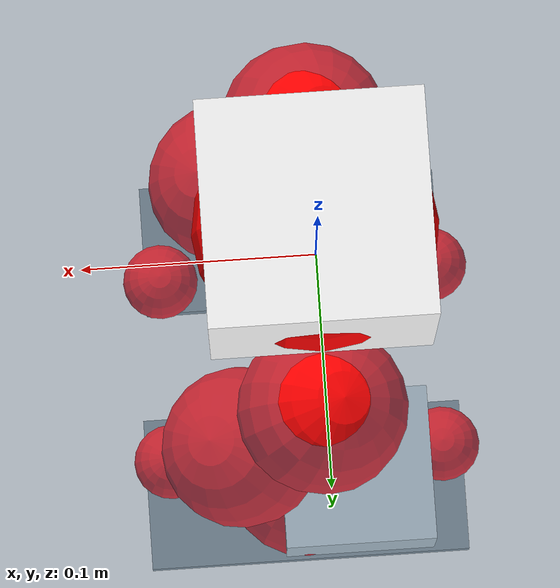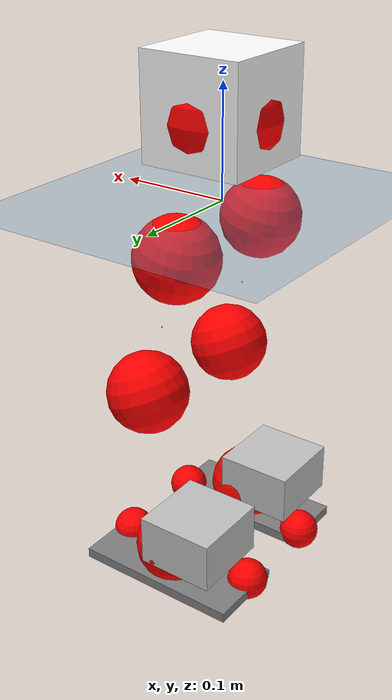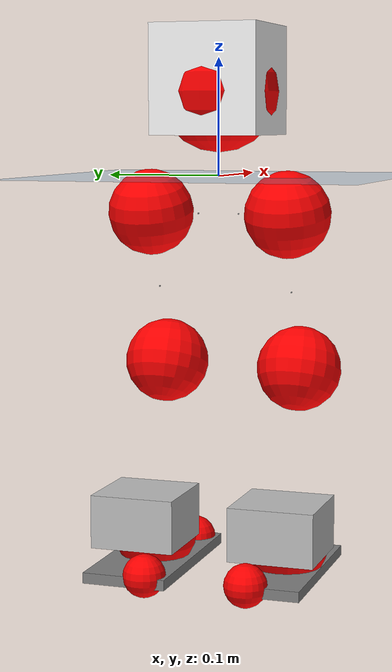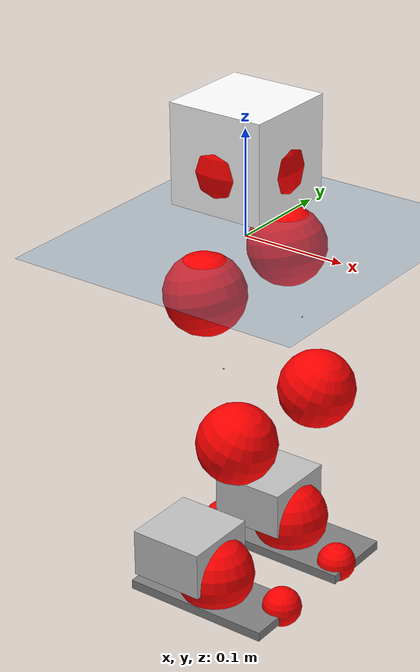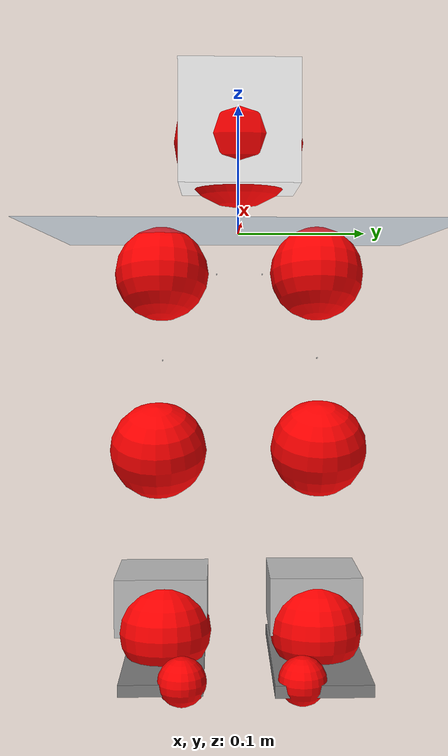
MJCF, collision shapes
<mujoco model="pi_12dof_release_v1">
  <compiler angle="radian" assetdir="assets" balanceinertia="true" inertiafromgeom="false"/>

  <option timestep="0.005" density="1.2" viscosity="2e-05"/>

  <size nkey="1"/>

  <visual>
    <quality shadowsize="8192"/>
    <map shadowclip="0.5"/>
  </visual>

  <default>
    <default class="/">
      <joint armature="0.01" damping="0.01" frictionloss="0.01"/>
      <geom contype="0" conaffinity="0" group="1" solref="-1000 -80"/>
      <site size="0.01 0.005 0.005" group="5"/>
      <general forcelimited="true" biastype="affine" gainprm="20" biasprm="0 -20 -0.5"/>
      <default class="foot">
        <geom size="0.0845 0.036 0.005" type="box" condim="6" group="4" priority="1" friction="0.9 0.2 0.2" solimp="0.015 1 0.005"/>
      </default>
      <default class="reward_collision_sphere">
        <geom group="5" rgba="1 0 0 1"/>
      </default>
    </default>
  </default>

  <asset>
    <texture type="skybox" colorspace="auto" name="//unnamed_texture_0" builtin="gradient" rgb1="0.95 0.95 0.95" rgb2="0.95 0.95 0.95" width="100" height="600"/>
    <texture type="2d" colorspace="auto" name="texplane" builtin="checker" rgb1="0.345 0.575 0.748" rgb2="0.345 0.575 0.748" markrgb="1 1 1" width="512" height="512"/>
    <material name="MatPlane" class="/" texture="texplane" texuniform="true" texrepeat="2 2" specular="0.9"/>
    <mesh name="baselink_1" class="/" file="baselink_1.STL"/>
    <mesh name="r_hip_pitch_link" class="/" file="r_hip_pitch_link.STL"/>
    <mesh name="r_hip_roll_link" class="/" file="r_hip_roll_link.STL"/>
    <mesh name="r_thigh_link" class="/" file="r_thigh_link.STL"/>
    <mesh name="r_calf_link" class="/" file="r_calf_link.STL"/>
    <mesh name="r_ankle_pitch_link" class="/" file="r_ankle_pitch_link.STL"/>
    <mesh name="r_ankle_roll_link" class="/" file="r_ankle_roll_link.STL"/>
    <mesh name="l_hip_pitch_link" class="/" file="l_hip_pitch_link.STL"/>
    <mesh name="l_hip_roll_link" class="/" file="l_hip_roll_link.STL"/>
    <mesh name="l_thigh_link" class="/" file="l_thigh_link.STL"/>
    <mesh name="l_calf_link" class="/" file="l_calf_link.STL"/>
    <mesh name="l_ankle_pitch_link" class="/" file="l_ankle_pitch_link.STL"/>
    <mesh name="l_ankle_roll_link" class="/" file="l_ankle_roll_link.STL"/>
  </asset>

  <worldbody>
    <geom name="floor" class="/" size="100 100 0.125" type="plane" group="0" material="MatPlane"/>
    <light name="toplight_shadow" class="/" pos="0 0 5" dir="0.0990148 0.0990148 -0.990148" type="directional" ambient="0.04 0.04 0.04" diffuse="0.55 0.55 0.55" specular="0.12 0.12 0.12"/>
    <light name="toplight_fill" class="/" pos="0 0 5" dir="0.0990148 0.0990148 -0.990148" type="directional" castshadow="false" ambient="0.04 0.04 0.04" diffuse="0.3 0.3 0.3" specular="0.08 0.08 0.08"/>
    <body name="trunk" pos="0.000818934 0.000154773 0.000673359" quat="1 -0.000424617 -1.83955e-05 -0.00012045">
      <inertial pos="0.00300388 -0.00107862 0.0402542" quat="0.696715 0.0110337 0.0105414 0.717186" mass="1.73578" diaginertia="0.00951348 0.00270551 0.00436516"/>
      <joint name="//unnamed_joint_0" type="free"/>
      <geom name="//unnamed_geom_1" class="/" type="mesh" density="0" rgba="1 1 1 1" mesh="baselink_1"/>
      <geom name="//unnamed_geom_2" class="/" size="0.0464038 0.0464038 0.0464038" pos="0 0 0.080501" type="box" rgba="1 1 1 1"/>
      <geom name="//unnamed_geom_3" class="reward_collision_sphere" size="0.0510442" pos="0 0 0.0704384"/>
      <site name="imu" class="/" pos="-0.0039924 -0.00397153 4.68352e-05" size="0.00928076"/>
      <camera name="track" class="/" pos="0 -1.57241 0" quat="0.707107 0.707107 0 0" mode="trackcom"/>
      <camera name="ego_camera" class="/" pos="0.074382 0 0.181127" quat="-0.5 -0.5 0.5 0.5"/>
      <body name="r_hip_pitch_link" pos="-0.00018633 -0.0175732 -0.0329034" quat="0.99217 -1.34034e-05 -0.124893 8.72874e-05">
        <inertial pos="0.00184674 -0.0439566 -0.000182172" quat="-0.0198344 0.704941 -0.0248021 0.708554" mass="0.296264" diaginertia="0.000104296 2.94578e-05 8.51151e-05"/>
        <joint name="r_hip_pitch_joint" class="/" pos="0 0 0" axis="-0.000476965 -1 -0.000522743" range="-1.74616 1.24519" armature="0.00962727" damping="0.0164698" frictionloss="0.00945487"/>
        <geom name="//unnamed_geom_4" class="/" type="mesh" density="0" rgba="0.75294 0.75294 0.75294 1" mesh="r_hip_pitch_link"/>
        <geom name="//unnamed_geom_5" class="/" size="0.000464038 0.000464038 0.000464038" type="box" rgba="0.75294 0.75294 0.75294 1"/>
        <body name="r_hip_roll_link" pos="0.000106623 -0.0434739 2.08332e-05" quat="1 -2.15564e-05 -8.09878e-05 -0.000127188">
          <inertial pos="-0.0012961 -0.000379117 -0.0627989" quat="0.706646 -0.0778639 -0.081766 0.6985" mass="0.308261" diaginertia="0.000321109 8.41226e-05 0.000132844"/>
          <joint name="r_hip_roll_joint" class="/" pos="0 0 0" axis="-0.999992 0.00379425 0.00126733" range="-0.121598 0.496931" armature="0.00931747" damping="0.00503947" frictionloss="0.00920042"/>
          <geom name="//unnamed_geom_6" class="/" type="mesh" density="0" rgba="0.75294 0.75294 0.75294 1" mesh="r_hip_roll_link"/>
          <geom name="//unnamed_geom_7" class="/" size="0.000464038 0.000464038 0.000464038" type="box" rgba="0.75294 0.75294 0.75294 1"/>
          <geom name="//unnamed_geom_8" class="reward_collision_sphere" size="0.0371231"/>
          <body name="r_thigh_link" pos="0.000719918 0.00136509 -0.0701905" quat="1 4.70538e-05 6.87328e-07 -5.51683e-05">
            <inertial pos="-4.01287e-05 0.00163477 -0.0488123" quat="0.737329 0.675534 -7.71942e-05 -9.72702e-05" mass="0.0903817" diaginertia="0.000118903 2.83295e-05 5.99483e-05"/>
            <joint name="r_thigh_joint" class="/" pos="0 0 0" axis="0.000581275 0.00284111 -0.999996" range="-0.295261 0.593527" armature="0.009472" damping="0.00602729" frictionloss="0.00889905"/>
            <geom name="//unnamed_geom_9" class="/" type="mesh" density="0" rgba="0.75294 0.75294 0.75294 1" mesh="r_thigh_link"/>
            <geom name="//unnamed_geom_10" class="/" size="0.000464038 0.000464038 0.000464038" type="box" rgba="0.75294 0.75294 0.75294 1"/>
            <body name="r_calf_link" pos="-0.00142891 -0.00274291 -0.0704731" quat="0.947648 5.62181e-06 0.319316 7.89544e-06">
              <inertial pos="-0.000561355 0.000266091 -0.0702147" quat="0.999984 -0.00360161 0.000180598 0.0044644" mass="0.653094" diaginertia="0.00342106 0.00105106 0.000181627"/>
              <joint name="r_calf_joint" class="/" pos="0 0 0" axis="0.00161636 -0.999996 0.00213119" range="-1.65048 0.649398" armature="0.00960794" damping="0.00817275" frictionloss="0.00921216"/>
              <geom name="//unnamed_geom_11" class="/" type="mesh" density="0" rgba="0.75294 0.75294 0.75294 1" mesh="r_calf_link"/>
              <geom name="//unnamed_geom_12" class="/" size="0.000464038 0.000464038 0.000464038" type="box" rgba="0.75294 0.75294 0.75294 1"/>
              <geom name="//unnamed_geom_13" class="reward_collision_sphere" size="0.0371231"/>
              <body name="r_ankle_pitch_link" pos="9.65713e-05 4.36086e-05 -0.140389" quat="0.980063 0.000127708 -0.198687 2.16979e-05">
                <inertial pos="0.00476671 0.00276235 -0.000647955" quat="-0.000746088 0.705648 0.000371368 0.708562" mass="0.141491" diaginertia="0.000298763 6.68435e-05 0.000123975"/>
                <joint name="r_ankle_pitch_joint" class="/" pos="0 0 0" axis="0.000917358 -0.999999 -0.00125475" stiffness="0.000614436" range="-1.29965 0.513188" armature="0.00930946" damping="0.00748488" frictionloss="0.00916216"/>
                <geom name="//unnamed_geom_14" class="/" type="mesh" density="0" rgba="0.75294 0.75294 0.75294 1" mesh="r_ankle_pitch_link"/>
                <geom name="//unnamed_geom_15" class="/" size="0.036195 0.0371231 0.0232019" type="box" rgba="0.75294 0.75294 0.75294 1"/>
                <body name="r_ankle_roll_link" pos="0.076148 0.00301609 0.000322389" quat="1 -1.66526e-05 1.92619e-05 -2.55808e-06">
                  <inertial pos="-0.0236383 -0.00011603 -0.0138207" quat="0.561434 0.429713 0.436416 0.556488" mass="0.413307" diaginertia="0.00106961 0.000309037 0.000289002"/>
                  <joint name="r_ankle_roll_joint" class="/" pos="0 0 0" axis="-0.999999 -0.000656208 -0.00100053" range="-0.169418 0.156712" armature="0.0091416" damping="0.00294938" frictionloss="0.00964946"/>
                  <geom name="//unnamed_geom_16" class="/" type="mesh" density="0" rgba="0.75294 0.75294 0.75294 1" mesh="r_ankle_roll_link"/>
                  <geom name="//unnamed_geom_17" class="/" type="mesh" rgba="0.75294 0.75294 0.75294 1" mesh="r_ankle_roll_link"/>
                  <geom name="right_foot" class="foot" size="0.0732625 0.031712 0.00453752" pos="-0.0505797 0 -0.0442756"/>
                  <geom name="//unnamed_geom_19" class="reward_collision_sphere" size="0.0371231" pos="-0.049588 0 -0.0201253"/>
                  <geom name="//unnamed_geom_20" class="reward_collision_sphere" size="0.0185615" pos="0.0148764 0.0157241 -0.0402505"/>
                  <geom name="//unnamed_geom_21" class="reward_collision_sphere" size="0.0185615" pos="-0.119011 0.0157241 -0.0402505"/>
                  <site name="right_foot" class="foot" pos="-0.0505797 0 -0.0442756" size="0.00928076"/>
                </body>
              </body>
            </body>
          </body>
        </body>
      </body>
      <body name="l_hip_pitch_link" pos="-0.000182888 0.0186025 -0.0329324" quat="0.992212 -9.3904e-05 -0.124557 -2.27927e-05">
        <inertial pos="0.000746624 0.042414 -7.49653e-05" quat="-0.0386636 0.705486 0.0292206 0.707065" mass="0.311649" diaginertia="0.000122748 3.19278e-05 0.000103566"/>
        <joint name="l_hip_pitch_joint" class="/" pos="0 0 0" axis="-0.0030786 0.999994 0.00168488" range="-1.26201 1.74591" armature="0.00894737" damping="0.012001" frictionloss="0.00917788"/>
        <geom name="//unnamed_geom_22" class="/" type="mesh" density="0" rgba="0.75294 0.75294 0.75294 1" mesh="l_hip_pitch_link"/>
        <geom name="//unnamed_geom_23" class="/" size="0.000464038 0.000464038 0.000464038" type="box" rgba="0.75294 0.75294 0.75294 1"/>
        <body name="l_hip_roll_link" pos="0.000447869 0.0435622 0.000500853" quat="1 -0.000125049 -9.41963e-05 -6.85735e-05">
          <inertial pos="-0.000815331 0.000463782 -0.0625438" quat="0.699577 -0.0751463 -0.078076 0.706292" mass="0.30786" diaginertia="0.000317569 8.31323e-05 0.000132041"/>
          <joint name="l_hip_roll_joint" class="/" pos="0 0 0" axis="-0.999999 0.000635921 -0.00143575" range="-0.50666 0.103336" armature="0.0094943" damping="0" frictionloss="0.0092671"/>
          <geom name="//unnamed_geom_24" class="/" type="mesh" density="0" rgba="0.75294 0.75294 0.75294 1" mesh="l_hip_roll_link"/>
          <geom name="//unnamed_geom_25" class="/" size="0.000464038 0.000464038 0.000464038" type="box" rgba="0.75294 0.75294 0.75294 1"/>
          <geom name="//unnamed_geom_26" class="reward_collision_sphere" size="0.0371231"/>
          <body name="l_thigh_link" pos="0.00108324 -0.00100456 -0.0689873" quat="1 -7.42263e-05 -3.79921e-06 0.000101978">
            <inertial pos="-0.000308368 -0.000587817 -0.0489012" quat="0.6753 0.737538 -0.00142466 0.0024696" mass="0.0907733" diaginertia="0.000119769 2.83055e-05 5.9594e-05"/>
            <joint name="l_thigh_joint" class="/" pos="0 0 0" axis="-6.59425e-05 0.000137303 -1" range="-0.599505 0.312251" armature="0.00928931" damping="0.00304823" frictionloss="0.00927771"/>
            <geom name="//unnamed_geom_27" class="/" type="mesh" density="0" rgba="0.75294 0.75294 0.75294 1" mesh="l_thigh_link"/>
            <geom name="//unnamed_geom_28" class="/" size="0.000464038 0.000464038 0.000464038" type="box" rgba="0.75294 0.75294 0.75294 1"/>
            <body name="l_calf_link" pos="-2.43811e-05 -0.000178707 -0.0710003" quat="0.947626 3.48312e-05 0.319383 3.31146e-05">
              <inertial pos="0.000389181 0.00203882 -0.0699874" quat="0.999984 0.003118 -7.35394e-05 0.00476219" mass="0.642522" diaginertia="0.00334036 0.00103801 0.000178602"/>
              <joint name="l_calf_joint" class="/" pos="0 0 0" axis="0.000348503 1 0.000425952" range="-0.636861 1.65287" armature="0.0092874" damping="0.00669833" frictionloss="0.00933306"/>
              <geom name="//unnamed_geom_29" class="/" type="mesh" density="0" rgba="0.75294 0.75294 0.75294 1" mesh="l_calf_link"/>
              <geom name="//unnamed_geom_30" class="/" size="0.000464038 0.000464038 0.000464038" type="box" rgba="0.75294 0.75294 0.75294 1"/>
              <geom name="//unnamed_geom_31" class="reward_collision_sphere" size="0.0371231"/>
              <body name="l_ankle_pitch_link" pos="0.000415395 0.000970244 -0.141046" quat="0.980064 8.96302e-06 -0.198681 -1.22833e-05">
                <inertial pos="0.00579184 -0.0016393 -0.000175471" quat="-0.00185858 0.707182 0.00188029 0.707027" mass="0.14238" diaginertia="0.000295159 6.72046e-05 0.000123518"/>
                <joint name="l_ankle_pitch_joint" class="/" pos="0 0 0" axis="9.91815e-05 1 0.000291102" range="-0.507446 1.29764" armature="0.00954476" damping="0.00280985" frictionloss="0.0095073"/>
                <geom name="//unnamed_geom_32" class="/" type="mesh" density="0" rgba="0.75294 0.75294 0.75294 1" mesh="l_ankle_pitch_link"/>
                <geom name="//unnamed_geom_33" class="/" size="0.036195 0.0371231 0.0232019" type="box" rgba="0.75294 0.75294 0.75294 1"/>
                <body name="l_ankle_roll_link" pos="0.0746479 0.000526575 -0.000483015" quat="1 9.26424e-05 -4.82134e-05 8.6155e-05">
                  <inertial pos="-0.0239707 -0.000631145 -0.0144385" quat="0.559581 0.430999 0.435017 0.558452" mass="0.422974" diaginertia="0.00109108 0.000314242 0.000294354"/>
                  <joint name="l_ankle_roll_joint" class="/" pos="0 0 0" axis="-0.999998 0.000268551 0.00174595" range="-0.147928 0.153246" armature="0.00893146" damping="0.00867991" frictionloss="0.00928188"/>
                  <geom name="//unnamed_geom_34" class="/" type="mesh" density="0" rgba="0.75294 0.75294 0.75294 1" mesh="l_ankle_roll_link"/>
                  <geom name="//unnamed_geom_35" class="/" type="mesh" rgba="0.75294 0.75294 0.75294 1" mesh="l_ankle_roll_link"/>
                  <geom name="left_foot" class="foot" size="0.0783011 0.0369137 0.00467378" pos="-0.0505797 0 -0.0442756"/>
                  <geom name="//unnamed_geom_37" class="reward_collision_sphere" size="0.0371231" pos="-0.049588 0 -0.0201253"/>
                  <geom name="//unnamed_geom_38" class="reward_collision_sphere" size="0.0185615" pos="0.0148764 -0.0157241 -0.0402505"/>
                  <geom name="//unnamed_geom_39" class="reward_collision_sphere" size="0.0185615" pos="-0.119011 -0.0157241 -0.0402505"/>
                  <site name="left_foot" class="foot" pos="-0.0505797 0 -0.0442756" size="0.00928076"/>
                </body>
              </body>
            </body>
          </body>
        </body>
      </body>
    </body>
  </worldbody>

  <contact>
    <pair class="/" geom1="floor" geom2="right_foot" name="//unnamed_contact_1"/>
    <pair class="/" geom1="floor" geom2="left_foot" name="//unnamed_contact_0"/>
  </contact>

  <actuator>
    <general name="r_hip_pitch_joint" class="/" joint="r_hip_pitch_joint" forcerange="-19.5651 19.5651" gainprm="18.5381" biasprm="0 -18.5381 -0.459377"/>
    <general name="r_hip_roll_joint" class="/" joint="r_hip_roll_joint" forcerange="-19.6275 19.6275" gainprm="18.5381" biasprm="0 -18.5381 -0.459377"/>
    <general name="r_thigh_joint" class="/" joint="r_thigh_joint" forcerange="-18.9668 18.9668" gainprm="18.5381" biasprm="0 -18.5381 -0.459377"/>
    <general name="r_calf_joint" class="/" joint="r_calf_joint" forcerange="-19.3612 19.3612" gainprm="18.5381" biasprm="0 -18.5381 -0.459377"/>
    <general name="r_ankle_pitch_joint" class="/" joint="r_ankle_pitch_joint" forcerange="-19.4556 19.4556" gainprm="18.5381" biasprm="0 -18.5381 -0.459377"/>
    <general name="r_ankle_roll_joint" class="/" joint="r_ankle_roll_joint" forcerange="-18.9229 18.9229" gainprm="18.5381" biasprm="0 -18.5381 -0.459377"/>
    <general name="l_hip_pitch_joint" class="/" joint="l_hip_pitch_joint" forcerange="-19.8684 19.8684" gainprm="18.5381" biasprm="0 -18.5381 -0.459377"/>
    <general name="l_hip_roll_joint" class="/" joint="l_hip_roll_joint" forcerange="-19.2342 19.2342" gainprm="18.5381" biasprm="0 -18.5381 -0.459377"/>
    <general name="l_thigh_joint" class="/" joint="l_thigh_joint" forcerange="-19.4675 19.4675" gainprm="18.5381" biasprm="0 -18.5381 -0.459377"/>
    <general name="l_calf_joint" class="/" joint="l_calf_joint" forcerange="-19.3179 19.3179" gainprm="18.5381" biasprm="0 -18.5381 -0.459377"/>
    <general name="l_ankle_pitch_joint" class="/" joint="l_ankle_pitch_joint" forcerange="-18.8465 18.8465" gainprm="18.5381" biasprm="0 -18.5381 -0.459377"/>
    <general name="l_ankle_roll_joint" class="/" joint="l_ankle_roll_joint" forcerange="-20.1489 20.1489" gainprm="18.5381" biasprm="0 -18.5381 -0.459377"/>
  </actuator>

  <sensor>
    <gyro site="imu" name="imu_angular_velocity"/>
    <velocimeter site="imu" name="imu_linear_velocity"/>
    <framelinvel objtype="site" objname="left_foot" name="left_foot_global_linear_velocity"/>
    <framelinvel objtype="site" objname="right_foot" name="right_foot_global_linear_velocity"/>
  </sensor>

  <keyframe>
    <key name="home" qpos="0 0 0.291 1 0 0 0 0.4 0 0 -0.8 0.4 0 -0.4 0 0 0.8 -0.4 0"/>
  </keyframe>
</mujoco>
